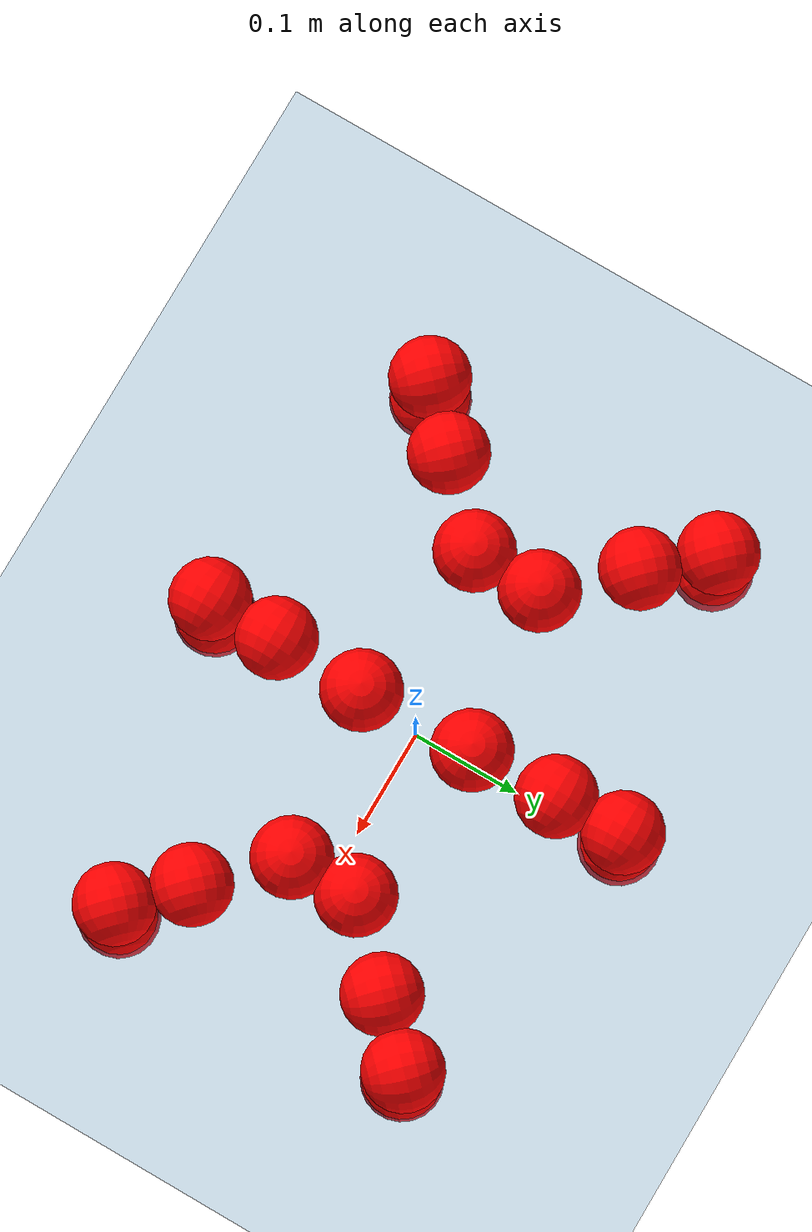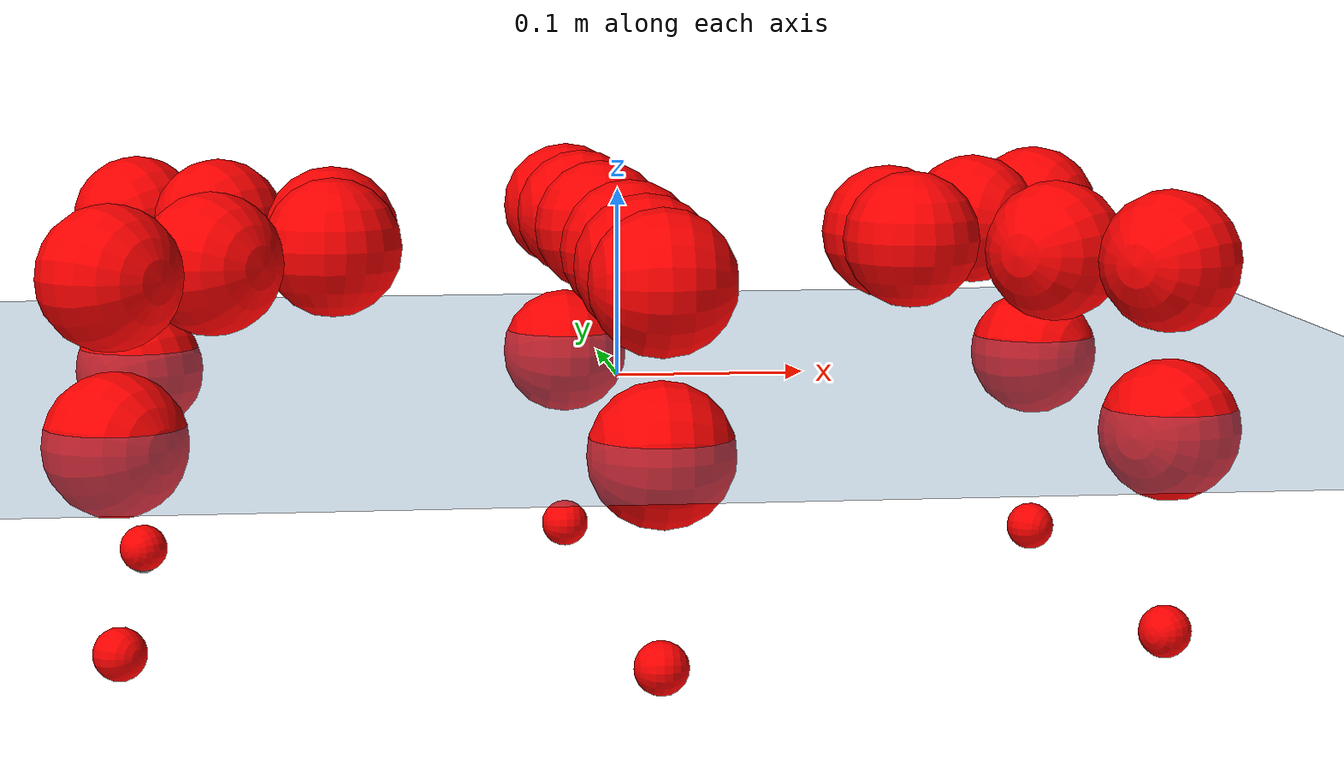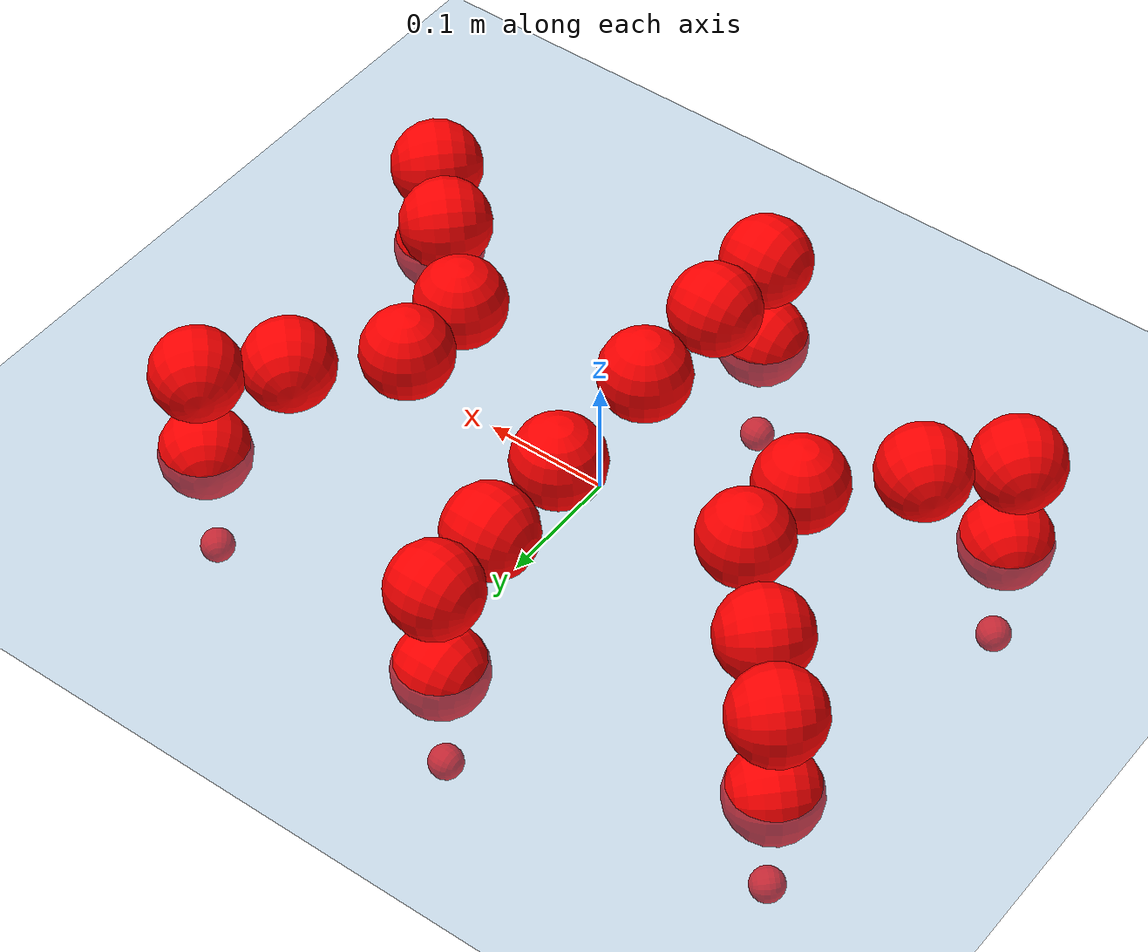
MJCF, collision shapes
<mujoco model="Golem">
  <compiler angle="radian" assetdir="assets" balanceinertia="true" inertiafromgeom="false"/>

  <option timestep="0.005" density="1.2" viscosity="2e-05"/>

  <size nkey="1"/>

  <visual>
    <quality shadowsize="8192"/>
    <map shadowclip="0.5"/>
  </visual>

  <default>
    <default class="/">
      <joint armature="0.01" damping="0.01" frictionloss="0.01"/>
      <geom contype="0" conaffinity="0" group="1" solref="-1000 -80"/>
      <site size="0.01 0.005 0.005" group="5"/>
      <general forcelimited="true" biastype="affine" gainprm="25" biasprm="0 -25 -0.5"/>
      <default class="visual">
        <geom type="mesh" group="2"/>
      </default>
      <default class="collision">
        <geom group="3"/>
      </default>
      <default class="foot">
        <geom size="0.01 0 0" condim="6" group="4" priority="1" solimp="0.015 1 0.01"/>
      </default>
      <default class="reward_collision_sphere">
        <geom group="5" rgba="1 0 0 1"/>
      </default>
    </default>
  </default>

  <asset>
    <texture type="skybox" colorspace="auto" name="//unnamed_texture_0" builtin="gradient" rgb1="0.95 0.95 0.95" rgb2="0.95 0.95 0.95" width="100" height="600"/>
    <texture type="2d" colorspace="auto" name="texplane" builtin="checker" rgb1="0.345 0.575 0.748" rgb2="0.345 0.575 0.748" markrgb="1 1 1" width="512" height="512"/>
    <material name="MatPlane" class="/" texture="texplane" texuniform="true" texrepeat="2 2" specular="0.9"/>
    <mesh name="body" class="/" file="body.stl" scale="0.001 0.001 0.001"/>
    <mesh name="coxa" class="/" file="coxa.stl" scale="0.001 0.001 0.001"/>
    <mesh name="femur" class="/" file="femur.stl" scale="0.001 0.001 0.001"/>
    <mesh name="tibia" class="/" file="tibia.stl" scale="0.001 0.001 0.001"/>
    <mesh name="tarsus" class="/" file="tarsus.stl" scale="0.001 0.001 0.001"/>
  </asset>

  <worldbody>
    <geom name="floor" class="/" size="100 100 0.125" type="plane" group="0" material="MatPlane"/>
    <light name="toplight_shadow" class="/" pos="0 0 5" dir="0.0990148 0.0990148 -0.990148" type="directional" ambient="0.04 0.04 0.04" diffuse="0.55 0.55 0.55" specular="0.12 0.12 0.12"/>
    <light name="toplight_fill" class="/" pos="0 0 5" dir="0.0990148 0.0990148 -0.990148" type="directional" castshadow="false" ambient="0.04 0.04 0.04" diffuse="0.3 0.3 0.3" specular="0.08 0.08 0.08"/>
    <body name="trunk" pos="-0.000305198 0.000149815 0.000454051" quat="1 -0.000228018 -3.84387e-05 -2.76628e-05">
      <inertial pos="0.000745249 -0.00120132 -0.00135153" quat="0.999993 -0.00222882 -0.00277751 -0.000904115" mass="2.83214" diaginertia="0.00897985 0.00097349 0.0187161"/>
      <joint name="//unnamed_joint_0" type="free"/>
      <geom name="//unnamed_geom_1" class="/" pos="0 0 0.0721754" quat="1 0 0 0" type="mesh" rgba="0.9 0.9 0.9 1" mesh="body"/>
      <site name="imu" class="/" pos="0.12838 0.00182444 0.104673" size="0.00907062"/>
      <camera name="track" class="/" pos="0 -1.24725 0" quat="0.707107 0.707107 0 0" mode="trackcom"/>
      <camera name="ego_camera" class="/" pos="0.126077 0 0.112774" quat="-0.5 -0.5 0.5 0.5"/>
      <body name="coxa_RR" pos="-0.17316 -0.0525784 0.0735106" quat="0.382659 -0.000104397 -3.50106e-05 -0.92389">
        <inertial pos="-0.00054428 0.000708057 0.000422074" quat="1 -0.000206801 0.000213391 6.3609e-05" mass="0.149412" diaginertia="0.00863716 0.000960469 0.018154"/>
        <joint name="coxa_joint_RR" class="/" pos="0 0 0" axis="0.00108291 0.00744737 -0.999972" range="-3.13492 3.13575" armature="0.00918284" damping="0" frictionloss="0.00910251"/>
        <geom name="//unnamed_geom_2" class="/" type="mesh" rgba="0.2 0.2 0.2 1" mesh="coxa"/>
        <geom name="//unnamed_geom_3" class="reward_collision_sphere" size="0.0362825" pos="-0.0290946 0 0"/>
        <body name="femur_RR" pos="0.0591132 -0.000206848 -0.000968944" quat="0.500031 -0.500028 0.499748 0.500193">
          <inertial pos="-0.000459298 -0.000112645 0.000617242" quat="0.999999 -0.000746814 -0.00110069 -0.000153673" mass="0.147108" diaginertia="0.00863494 0.000925998 0.0178075"/>
          <joint name="femur_joint_RR" class="/" pos="0 0 0" axis="-0.00034742 0.00798502 -0.999968" range="-3.14034 3.12079" armature="0.00909367" damping="0.000584773" frictionloss="0.0086303"/>
          <geom name="//unnamed_geom_4" class="/" type="mesh" rgba="0.9 0.9 0.9 1" mesh="femur"/>
          <geom name="//unnamed_geom_5" class="reward_collision_sphere" size="0.0362825"/>
          <body name="tibia_RR" pos="0.00100235 -0.0684089 -0.00125622" quat="-1.37355e-05 1 -1.53867e-05 -4.00469e-05">
            <inertial pos="-0.000261934 -0.0016275 0.000196904" quat="0.999957 -0.00163427 0.00123024 -0.00908673" mass="0.149441" diaginertia="0.0087156 0.000947064 0.0182249"/>
            <joint name="tibia_joint_RR" class="/" pos="0 0 0" axis="-0.000284613 -0.000525774 1" range="-3.14199 3.14823" armature="0.00920546" damping="0" frictionloss="0.00951993"/>
            <geom name="//unnamed_geom_6" class="/" type="mesh" rgba="0.2 0.2 0.2 1" mesh="tibia"/>
            <geom name="//unnamed_geom_7" class="reward_collision_sphere" size="0.0362825"/>
            <body name="tarsus_RR" pos="0.0822116 -0.00172365 0.000113142" quat="1 2.99064e-05 2.63885e-05 0.0003326">
              <inertial pos="0.0583076 0.000571773 2.78256e-05" quat="0.496309 0.504858 0.501612 0.497174" mass="0.151181" diaginertia="0.00862532 0.000942901 0.0180476"/>
              <joint name="tarsus_joint_RR" class="/" pos="0 0 0" axis="0.000582636 0.000386021 1" range="-3.13653 3.13403" armature="0.00939983" damping="0.00591528" frictionloss="0.00934329"/>
              <geom name="//unnamed_geom_8" class="/" type="mesh" rgba="0.9 0.9 0.9 1" mesh="tarsus"/>
              <geom name="foot_1" class="foot" size="0.00871887" pos="0.10862 0 0" quat="0 -0.707107 0 0.707107"/>
              <geom name="//unnamed_geom_10" class="reward_collision_sphere" size="0.0362825"/>
              <geom name="//unnamed_geom_11" class="reward_collision_sphere" size="0.0136059" pos="0.104256 0 0"/>
              <site name="foot_1" class="foot" pos="0.10862 0 0" quat="0 -0.707107 0 0.707107" size="0.00907062"/>
            </body>
          </body>
        </body>
      </body>
      <body name="coxa_RM" pos="-2.41591e-05 -0.0831906 0.0729228" quat="0.706884 0.000872046 -0.000233522 -0.707329">
        <inertial pos="0.000313988 -0.000230029 -0.000676736" quat="1 2.45354e-05 1.87233e-05 -1.40357e-05" mass="0.150754" diaginertia="0.00864234 0.000954704 0.018201"/>
        <joint name="coxa_joint_RM" class="/" pos="0 0 0" axis="0.000395926 -0.00150358 -0.999999" range="-3.13103 3.13725" armature="0.00918241" damping="0.0109871" frictionloss="0.00862822"/>
        <geom name="//unnamed_geom_12" class="/" type="mesh" rgba="0.2 0.2 0.2 1" mesh="coxa"/>
        <geom name="//unnamed_geom_13" class="reward_collision_sphere" size="0.0362825" pos="-0.0290946 0 0"/>
        <body name="femur_RM" pos="0.0560841 -0.00196649 0.000682921" quat="0.499925 -0.499922 0.500079 0.500074">
          <inertial pos="0.0017535 0.000223074 -0.000224089" quat="0.999989 -0.000401766 0.00429522 -0.0016288" mass="0.146616" diaginertia="0.00827443 0.00092784 0.0175048"/>
          <joint name="femur_joint_RM" class="/" pos="0 0 0" axis="4.2318e-06 1.35954e-06 -1" range="-3.14416 3.10831" armature="0.00880835" damping="0.00765109" frictionloss="0.00939557"/>
          <geom name="//unnamed_geom_14" class="/" type="mesh" rgba="0.9 0.9 0.9 1" mesh="femur"/>
          <geom name="//unnamed_geom_15" class="reward_collision_sphere" size="0.0362825"/>
          <body name="tibia_RM" pos="0.000729635 -0.0660499 -0.000389571" quat="0.000137205 1 -0.00015759 -9.77347e-05">
            <inertial pos="0.000469776 0.00216476 0.000526053" quat="0.999997 0.000411307 0.000502513 0.00233035" mass="0.150332" diaginertia="0.00864209 0.000950418 0.0183446"/>
            <joint name="tibia_joint_RM" class="/" pos="0 0 0" axis="0.00142986 0.000399645 0.999999" range="-3.14111 3.13256" armature="0.00942279" damping="0.0153342" frictionloss="0.00902327"/>
            <geom name="//unnamed_geom_16" class="/" type="mesh" rgba="0.2 0.2 0.2 1" mesh="tibia"/>
            <geom name="//unnamed_geom_17" class="reward_collision_sphere" size="0.0362825"/>
            <body name="tarsus_RM" pos="0.0829847 -0.000930677 0.000577046" quat="1 -2.0633e-05 -5.36949e-05 -1.9822e-05">
              <inertial pos="0.0593005 -5.90715e-05 -0.000585011" quat="0.500115 0.499927 0.500218 0.49974" mass="0.153248" diaginertia="0.00857461 0.000948654 0.0187237"/>
              <joint name="tarsus_joint_RM" class="/" pos="0 0 0" axis="-0.00330711 -0.00199248 0.999993" stiffness="0.00169896" range="-3.14908 3.12146" armature="0.00893946" damping="0.00821867" frictionloss="0.00884961"/>
              <geom name="//unnamed_geom_18" class="/" type="mesh" rgba="0.9 0.9 0.9 1" mesh="tarsus"/>
              <geom name="foot_2" class="foot" size="0.00905308" pos="0.10862 0 0" quat="0 -0.707107 0 0.707107"/>
              <geom name="//unnamed_geom_20" class="reward_collision_sphere" size="0.0362825"/>
              <geom name="//unnamed_geom_21" class="reward_collision_sphere" size="0.0136059" pos="0.104256 0 0"/>
              <site name="foot_2" class="foot" pos="0.10862 0 0" quat="0 -0.707107 0 0.707107" size="0.00907062"/>
            </body>
          </body>
        </body>
      </body>
      <body name="coxa_RF" pos="0.1738 -0.0526049 0.0739718" quat="0.923808 -0.000302806 0.000210082 -0.382855">
        <inertial pos="0.000466001 -0.00166645 0.000736407" quat="0.999971 0.00222431 0.00332827 0.00649338" mass="0.147686" diaginertia="0.00867286 0.000942909 0.0181997"/>
        <joint name="coxa_joint_RF" class="/" pos="0 0 0" axis="-8.84542e-05 -0.000284267 -1" range="-3.10427 3.12282" armature="0.00868267" damping="0" frictionloss="0.00919556"/>
        <geom name="//unnamed_geom_22" class="/" type="mesh" rgba="0.2 0.2 0.2 1" mesh="coxa"/>
        <geom name="//unnamed_geom_23" class="reward_collision_sphere" size="0.0362825" pos="-0.0290946 0 0"/>
        <body name="femur_RF" pos="0.0586374 0.00124862 -0.000329518" quat="0.499995 -0.500001 0.500007 0.499997">
          <inertial pos="-0.000145057 0.00143312 0.000117221" quat="0.999994 -0.00189849 0.00194773 -0.00230714" mass="0.149994" diaginertia="0.0088854 0.000962746 0.0188695"/>
          <joint name="femur_joint_RF" class="/" pos="0 0 0" axis="0.000543074 0.00180182 -0.999998" range="-3.14741 3.15577" armature="0.00902488" damping="0.00987767" frictionloss="0.00947512"/>
          <geom name="//unnamed_geom_24" class="/" type="mesh" rgba="0.9 0.9 0.9 1" mesh="femur"/>
          <geom name="//unnamed_geom_25" class="reward_collision_sphere" size="0.0362825"/>
          <body name="tibia_RF" pos="0.000788018 -0.0672402 -0.000603038" quat="7.4246e-05 1 4.4574e-05 -1.46882e-05">
            <inertial pos="0.0003683 0.000268754 -0.00203289" quat="0.999984 0.0052746 0.00141714 0.0014276" mass="0.151651" diaginertia="0.00871123 0.000935011 0.0185632"/>
            <joint name="tibia_joint_RF" class="/" pos="0 0 0" axis="0.0040748 -0.00265215 0.999988" stiffness="0.00135817" range="-3.13491 3.12398" armature="0.00888931" damping="0.012574" frictionloss="0.00878314"/>
            <geom name="//unnamed_geom_26" class="/" type="mesh" rgba="0.2 0.2 0.2 1" mesh="tibia"/>
            <geom name="//unnamed_geom_27" class="reward_collision_sphere" size="0.0362825"/>
            <body name="tarsus_RF" pos="0.0858203 0.00115058 -0.00107089" quat="1 0.0002057 -7.44857e-05 3.88538e-05">
              <inertial pos="0.0588584 -2.64782e-05 -0.000627559" quat="0.499678 0.500706 0.499271 0.500344" mass="0.148199" diaginertia="0.0086109 0.000921656 0.0176992"/>
              <joint name="tarsus_joint_RF" class="/" pos="0 0 0" axis="-0.000637875 0.00292712 0.999996" stiffness="0.0233247" range="-3.12859 3.14004" armature="0.00895494" damping="0" frictionloss="0.00912093"/>
              <geom name="//unnamed_geom_28" class="/" type="mesh" rgba="0.9 0.9 0.9 1" mesh="tarsus"/>
              <geom name="foot_3" class="foot" size="0.00917512" pos="0.10862 0 0" quat="0 -0.707107 0 0.707107"/>
              <geom name="//unnamed_geom_30" class="reward_collision_sphere" size="0.0362825"/>
              <geom name="//unnamed_geom_31" class="reward_collision_sphere" size="0.0136059" pos="0.104256 0 0"/>
              <site name="foot_3" class="foot" pos="0.10862 0 0" quat="0 -0.707107 0 0.707107" size="0.00907062"/>
            </body>
          </body>
        </body>
      </body>
      <body name="coxa_LR" pos="-0.171249 0.0538798 0.0740484" quat="0.382448 -0.000146495 -5.54989e-05 0.923977">
        <inertial pos="-1.17321e-05 -0.000991133 0.00059418" quat="0.999998 -0.00112692 -0.00172364 -0.000509929" mass="0.149249" diaginertia="0.00877935 0.000937725 0.0177195"/>
        <joint name="coxa_joint_LR" class="/" pos="0 0 0" axis="-0.00164539 -0.00169665 -0.999997" range="-3.12649 3.11937" armature="0.00860627" damping="0.0073098" frictionloss="0.0091651"/>
        <geom name="//unnamed_geom_32" class="/" type="mesh" rgba="0.2 0.2 0.2 1" mesh="coxa"/>
        <geom name="//unnamed_geom_33" class="reward_collision_sphere" size="0.0362825" pos="-0.0290946 0 0"/>
        <body name="femur_LR" pos="0.0588041 -0.00278861 -0.000411918" quat="0.500016 -0.500079 0.500411 0.499493">
          <inertial pos="0.000330212 -0.00236735 0.000283674" quat="1 -3.3668e-07 -1.08372e-05 -8.1572e-06" mass="0.150103" diaginertia="0.00839898 0.000944736 0.0178169"/>
          <joint name="femur_joint_LR" class="/" pos="0 0 0" axis="0.000295377 -0.00252165 0.999997" stiffness="0.000666499" range="-3.1133 3.13617" armature="0.00882379" damping="0" frictionloss="0.00906039"/>
          <geom name="//unnamed_geom_34" class="/" type="mesh" rgba="0.9 0.9 0.9 1" mesh="femur"/>
          <geom name="//unnamed_geom_35" class="reward_collision_sphere" size="0.0362825"/>
          <body name="tibia_LR" pos="0.00198347 -0.0683201 -0.00359716" quat="0.000100392 1 -0.000193103 -0.000236167">
            <inertial pos="-0.000823521 -0.000640143 0.00095587" quat="0.999984 -0.00167755 -0.00511933 -0.00179706" mass="0.14969" diaginertia="0.00847558 0.000946187 0.0181939"/>
            <joint name="tibia_joint_LR" class="/" pos="0 0 0" axis="0.00214703 0.00260866 -0.999994" stiffness="0.000557758" range="-3.15319 3.16809" armature="0.00869351" damping="0" frictionloss="0.00906784"/>
            <geom name="//unnamed_geom_36" class="/" type="mesh" rgba="0.2 0.2 0.2 1" mesh="tibia"/>
            <geom name="//unnamed_geom_37" class="reward_collision_sphere" size="0.0362825"/>
            <body name="tarsus_LR" pos="0.0855683 9.95215e-05 -0.000956157" quat="1 4.66947e-05 1.42591e-05 -3.0555e-06">
              <inertial pos="0.0605657 -0.00142827 -0.00119826" quat="0.495824 0.500948 0.502507 0.500696" mass="0.14888" diaginertia="0.00846691 0.000951742 0.0179298"/>
              <joint name="tarsus_joint_LR" class="/" pos="0 0 0" axis="-0.00964668 0.00471905 -0.999942" range="-3.11834 3.14827" armature="0.00895418" damping="0" frictionloss="0.00929263"/>
              <geom name="//unnamed_geom_38" class="/" type="mesh" rgba="0.9 0.9 0.9 1" mesh="tarsus"/>
              <geom name="foot_4" class="foot" size="0.009781" pos="0.10862 0 0" quat="0.707107 0 -0.707107 0"/>
              <geom name="//unnamed_geom_40" class="reward_collision_sphere" size="0.0362825"/>
              <geom name="//unnamed_geom_41" class="reward_collision_sphere" size="0.0136059" pos="0.104256 0 0"/>
              <site name="foot_4" class="foot" pos="0.10862 0 0" quat="0.707107 0 -0.707107 0" size="0.00907062"/>
            </body>
          </body>
        </body>
      </body>
      <body name="coxa_LM" pos="-0.00296808 0.0821202 0.0743216" quat="0.707134 -0.000165724 -1.99151e-05 0.707079">
        <inertial pos="0.00097242 -0.000225627 -0.00067584" quat="0.999983 0.00387515 0.00115542 0.00430725" mass="0.151519" diaginertia="0.00870019 0.000966981 0.0187236"/>
        <joint name="coxa_joint_LM" class="/" pos="0 0 0" axis="0.00385259 -0.0106227 -0.999936" range="-3.14306 3.13218" armature="0.00869921" damping="0.00545935" frictionloss="0.00887988"/>
        <geom name="//unnamed_geom_42" class="/" type="mesh" rgba="0.2 0.2 0.2 1" mesh="coxa"/>
        <geom name="//unnamed_geom_43" class="reward_collision_sphere" size="0.0362825" pos="-0.0290946 0 0"/>
        <body name="femur_LM" pos="0.0525847 0.00213804 -0.000412966" quat="0.500066 -0.500018 0.499976 0.499941">
          <inertial pos="-9.12191e-06 -0.000176378 0.000686427" quat="0.999998 -0.00140125 0.00147138 -9.64156e-05" mass="0.148269" diaginertia="0.00847452 0.000970394 0.0185298"/>
          <joint name="femur_joint_LM" class="/" pos="0 0 0" axis="0.00229373 0.000671425 0.999997" range="-3.15365 3.14912" armature="0.00898724" damping="0" frictionloss="0.0090659"/>
          <geom name="//unnamed_geom_44" class="/" type="mesh" rgba="0.9 0.9 0.9 1" mesh="femur"/>
          <geom name="//unnamed_geom_45" class="reward_collision_sphere" size="0.0362825"/>
          <body name="tibia_LM" pos="0.00099675 -0.0641576 0.00202756" quat="-0.000313384 1 -1.86708e-05 0.000303526">
            <inertial pos="-0.00049519 -0.00117699 -0.00109533" quat="0.999977 0.00200067 -0.00588644 0.00278266" mass="0.148216" diaginertia="0.00854243 0.000962118 0.0182974"/>
            <joint name="tibia_joint_LM" class="/" pos="0 0 0" axis="0.00124088 0.000502363 -0.999999" range="-3.14179 3.14017" armature="0.00899721" damping="0.000907078" frictionloss="0.00874715"/>
            <geom name="//unnamed_geom_46" class="/" type="mesh" rgba="0.2 0.2 0.2 1" mesh="tibia"/>
            <geom name="//unnamed_geom_47" class="reward_collision_sphere" size="0.0362825"/>
            <body name="tarsus_LM" pos="0.0866687 -0.000726237 -0.000751262" quat="1 -0.000360252 0.000293608 2.96352e-05">
              <inertial pos="0.0581411 0.000163432 -0.000723462" quat="0.501297 0.504183 0.49446 0.50001" mass="0.150466" diaginertia="0.00874431 0.000948546 0.0181307"/>
              <joint name="tarsus_joint_LM" class="/" pos="0 0 0" axis="-0.00737765 0.000180306 -0.999973" range="-3.12823 3.13019" armature="0.00896771" damping="0.00116672" frictionloss="0.00967539"/>
              <geom name="//unnamed_geom_48" class="/" type="mesh" rgba="0.9 0.9 0.9 1" mesh="tarsus"/>
              <geom name="foot_5" class="foot" size="0.00902005" pos="0.10862 0 0" quat="0.707107 0 -0.707107 0"/>
              <geom name="//unnamed_geom_50" class="reward_collision_sphere" size="0.0362825"/>
              <geom name="//unnamed_geom_51" class="reward_collision_sphere" size="0.0136059" pos="0.104256 0 0"/>
              <site name="foot_5" class="foot" pos="0.10862 0 0" quat="0.707107 0 -0.707107 0" size="0.00907062"/>
            </body>
          </body>
        </body>
      </body>
      <body name="coxa_LF" pos="0.173863 0.05143 0.0720417" quat="0.923883 7.34627e-06 2.91677e-05 0.382676">
        <inertial pos="0.000145041 -0.000148479 0.00124357" quat="0.999999 -0.000295675 0.00014022 -0.00164916" mass="0.149838" diaginertia="0.00842745 0.000960511 0.0182777"/>
        <joint name="coxa_joint_LF" class="/" pos="0 0 0" axis="-0.00633977 -0.00648928 -0.999959" range="-3.14465 3.13751" armature="0.00873714" damping="0.00770206" frictionloss="0.0100439"/>
        <geom name="//unnamed_geom_52" class="/" type="mesh" rgba="0.2 0.2 0.2 1" mesh="coxa"/>
        <geom name="//unnamed_geom_53" class="reward_collision_sphere" size="0.0362825" pos="-0.0290946 0 0"/>
        <body name="femur_LF" pos="0.0577859 0.000396726 0.000339173" quat="0.500012 -0.500014 0.499999 0.499976">
          <inertial pos="-0.00209994 0.000702165 0.00214035" quat="0.999998 0.00165053 -0.000588855 0.00113398" mass="0.151029" diaginertia="0.00874072 0.000949807 0.0182833"/>
          <joint name="femur_joint_LF" class="/" pos="0 0 0" axis="-0.000523674 -0.00243909 0.999997" range="-3.1402 3.13531" armature="0.008919" damping="0" frictionloss="0.00889764"/>
          <geom name="//unnamed_geom_54" class="/" type="mesh" rgba="0.9 0.9 0.9 1" mesh="femur"/>
          <geom name="//unnamed_geom_55" class="reward_collision_sphere" size="0.0362825"/>
          <body name="tibia_LF" pos="-0.000606025 -0.066946 0.000885065" quat="-0.000289608 1 9.86295e-05 9.45654e-05">
            <inertial pos="0.000952581 -0.00198228 -0.00066069" quat="1 0.00023724 -7.40178e-05 0.000352974" mass="0.143342" diaginertia="0.00814478 0.000914781 0.0175406"/>
            <joint name="tibia_joint_LF" class="/" pos="0 0 0" axis="-0.00454459 -0.00251643 -0.999987" stiffness="0.00166559" range="-3.13354 3.14944" armature="0.00908369" damping="0" frictionloss="0.00893249"/>
            <geom name="//unnamed_geom_56" class="/" type="mesh" rgba="0.2 0.2 0.2 1" mesh="tibia"/>
            <geom name="//unnamed_geom_57" class="reward_collision_sphere" size="0.0362825"/>
            <body name="tarsus_LF" pos="0.0839598 0.000837326 0.00133154" quat="1 -2.26051e-05 -0.000121099 -2.86056e-05">
              <inertial pos="0.0585331 -0.000151452 -0.00035833" quat="0.500729 0.500202 0.500105 0.498963" mass="0.144541" diaginertia="0.00825442 0.000910923 0.017552"/>
              <joint name="tarsus_joint_LF" class="/" pos="0 0 0" axis="-0.00330631 -0.00429553 -0.999985" range="-3.14077 3.14071" armature="0.00936092" damping="0.0145512" frictionloss="0.00818464"/>
              <geom name="//unnamed_geom_58" class="/" type="mesh" rgba="0.9 0.9 0.9 1" mesh="tarsus"/>
              <geom name="foot_6" class="foot" size="0.00869027" pos="0.10862 0 0" quat="0.707107 0 -0.707107 0"/>
              <geom name="//unnamed_geom_60" class="reward_collision_sphere" size="0.0362825"/>
              <geom name="//unnamed_geom_61" class="reward_collision_sphere" size="0.0136059" pos="0.104256 0 0"/>
              <site name="foot_6" class="foot" pos="0.10862 0 0" quat="0.707107 0 -0.707107 0" size="0.00907062"/>
            </body>
          </body>
        </body>
      </body>
    </body>
  </worldbody>

  <contact>
    <pair class="/" geom1="floor" geom2="foot_1" name="//unnamed_contact_0"/>
    <pair class="/" geom1="floor" geom2="foot_2" name="//unnamed_contact_1"/>
    <pair class="/" geom1="floor" geom2="foot_3" name="//unnamed_contact_2"/>
    <pair class="/" geom1="floor" geom2="foot_4" name="//unnamed_contact_3"/>
    <pair class="/" geom1="floor" geom2="foot_5" name="//unnamed_contact_4"/>
    <pair class="/" geom1="floor" geom2="foot_6" name="//unnamed_contact_5"/>
  </contact>

  <actuator>
    <general name="coxa_joint_RR" class="/" joint="coxa_joint_RR" forcerange="-6.85993 6.85993" gainprm="22.1051" biasprm="0 -22.1051 -0.487026"/>
    <general name="femur_joint_RR" class="/" joint="femur_joint_RR" forcerange="-6.49392 6.49392" gainprm="22.1051" biasprm="0 -22.1051 -0.487026"/>
    <general name="tibia_joint_RR" class="/" joint="tibia_joint_RR" forcerange="-6.79929 6.79929" gainprm="22.1051" biasprm="0 -22.1051 -0.487026"/>
    <general name="tarsus_joint_RR" class="/" joint="tarsus_joint_RR" forcerange="-6.92473 6.92473" gainprm="22.1051" biasprm="0 -22.1051 -0.487026"/>
    <general name="coxa_joint_RM" class="/" joint="coxa_joint_RM" forcerange="-6.75609 6.75609" gainprm="22.1051" biasprm="0 -22.1051 -0.487026"/>
    <general name="femur_joint_RM" class="/" joint="femur_joint_RM" forcerange="-6.61377 6.61377" gainprm="22.1051" biasprm="0 -22.1051 -0.487026"/>
    <general name="tibia_joint_RM" class="/" joint="tibia_joint_RM" forcerange="-6.63702 6.63702" gainprm="22.1051" biasprm="0 -22.1051 -0.487026"/>
    <general name="tarsus_joint_RM" class="/" joint="tarsus_joint_RM" forcerange="-7.07628 7.07628" gainprm="22.1051" biasprm="0 -22.1051 -0.487026"/>
    <general name="coxa_joint_RF" class="/" joint="coxa_joint_RF" forcerange="-6.44277 6.44277" gainprm="22.1051" biasprm="0 -22.1051 -0.487026"/>
    <general name="femur_joint_RF" class="/" joint="femur_joint_RF" forcerange="-6.21651 6.21651" gainprm="22.1051" biasprm="0 -22.1051 -0.487026"/>
    <general name="tibia_joint_RF" class="/" joint="tibia_joint_RF" forcerange="-6.56383 6.56383" gainprm="22.1051" biasprm="0 -22.1051 -0.487026"/>
    <general name="tarsus_joint_RF" class="/" joint="tarsus_joint_RF" forcerange="-6.61704 6.61704" gainprm="22.1051" biasprm="0 -22.1051 -0.487026"/>
    <general name="coxa_joint_LR" class="/" joint="coxa_joint_LR" forcerange="-6.74635 6.74635" gainprm="22.1051" biasprm="0 -22.1051 -0.487026"/>
    <general name="femur_joint_LR" class="/" joint="femur_joint_LR" forcerange="-6.58888 6.58888" gainprm="22.1051" biasprm="0 -22.1051 -0.487026"/>
    <general name="tibia_joint_LR" class="/" joint="tibia_joint_LR" forcerange="-6.65164 6.65164" gainprm="22.1051" biasprm="0 -22.1051 -0.487026"/>
    <general name="tarsus_joint_LR" class="/" joint="tarsus_joint_LR" forcerange="-6.74 6.74" gainprm="22.1051" biasprm="0 -22.1051 -0.487026"/>
    <general name="coxa_joint_LM" class="/" joint="coxa_joint_LM" forcerange="-6.57756 6.57756" gainprm="22.1051" biasprm="0 -22.1051 -0.487026"/>
    <general name="femur_joint_LM" class="/" joint="femur_joint_LM" forcerange="-6.68472 6.68472" gainprm="22.1051" biasprm="0 -22.1051 -0.487026"/>
    <general name="tibia_joint_LM" class="/" joint="tibia_joint_LM" forcerange="-6.86883 6.86883" gainprm="22.1051" biasprm="0 -22.1051 -0.487026"/>
    <general name="tarsus_joint_LM" class="/" joint="tarsus_joint_LM" forcerange="-6.63481 6.63481" gainprm="22.1051" biasprm="0 -22.1051 -0.487026"/>
    <general name="coxa_joint_LF" class="/" joint="coxa_joint_LF" forcerange="-6.33814 6.33814" gainprm="22.1051" biasprm="0 -22.1051 -0.487026"/>
    <general name="femur_joint_LF" class="/" joint="femur_joint_LF" forcerange="-6.74186 6.74186" gainprm="22.1051" biasprm="0 -22.1051 -0.487026"/>
    <general name="tibia_joint_LF" class="/" joint="tibia_joint_LF" forcerange="-6.49503 6.49503" gainprm="22.1051" biasprm="0 -22.1051 -0.487026"/>
    <general name="tarsus_joint_LF" class="/" joint="tarsus_joint_LF" forcerange="-6.85831 6.85831" gainprm="22.1051" biasprm="0 -22.1051 -0.487026"/>
  </actuator>

  <sensor>
    <gyro site="imu" name="imu_angular_velocity"/>
    <velocimeter site="imu" name="imu_linear_velocity"/>
    <framelinvel objtype="site" objname="foot_1" name="foot_1_global_linear_velocity"/>
    <framelinvel objtype="site" objname="foot_2" name="foot_2_global_linear_velocity"/>
    <framelinvel objtype="site" objname="foot_3" name="foot_3_global_linear_velocity"/>
    <framelinvel objtype="site" objname="foot_4" name="foot_4_global_linear_velocity"/>
    <framelinvel objtype="site" objname="foot_5" name="foot_5_global_linear_velocity"/>
    <framelinvel objtype="site" objname="foot_6" name="foot_6_global_linear_velocity"/>
  </sensor>

  <keyframe>
    <key name="home" qpos="0 0 0.1457 1 0 0 0 0 0 0 0 0 0 0 0 0 0 0 0 0 0 0 0 0 0 0 0 0 0 0 0"/>
  </keyframe>
</mujoco>
